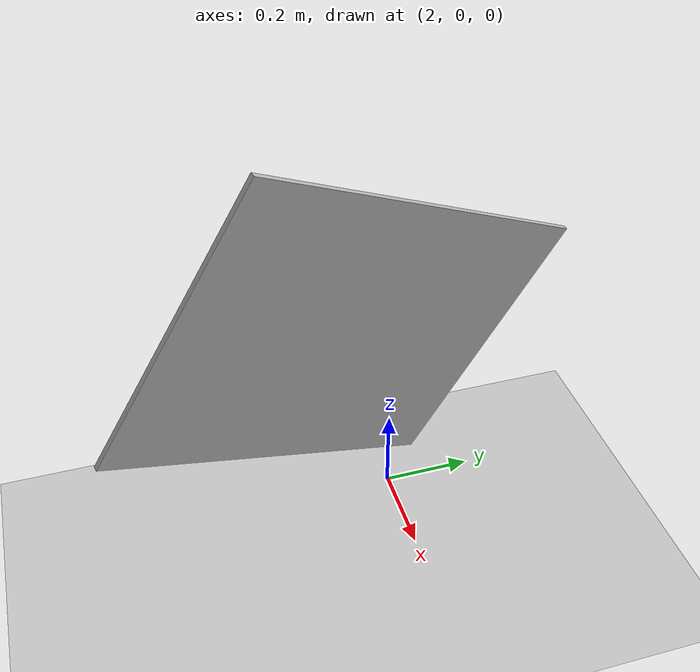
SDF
<sdf version="1.7">
 <world name="default">
  <scene><ambient>0.4 0.4 0.4 1</ambient><background>0.7 0.7 0.7 1</background><shadows>1</shadows></scene>
  <light name="sun" type="directional">
   <pose>0 0 10 0 -0 0</pose>
   <diffuse>0.8 0.8 0.8 1</diffuse>
   <specular>0.2 0.2 0.2 1</specular>
   <attenuation>
    <range>1000</range>
    <constant>0.9</constant>
    <linear>0.01</linear>
    <quadratic>0.001</quadratic>
   </attenuation>
   <direction>-0.5 0.1 -0.9</direction>
   <spot><inner_angle>0</inner_angle><outer_angle>0</outer_angle><falloff>0</falloff></spot>
  </light>
  <model name="ground_plane">
   <static>1</static>
   <link name="link">
    <collision name="collision">
     <geometry><plane><normal>0 0 1</normal><size>100 100</size></plane></geometry>
     <surface>
      <contact><collide_bitmask>65535</collide_bitmask></contact>
      <friction><ode><mu>100</mu><mu2>50</mu2></ode></friction>
     </surface>
    </collision>
    <visual name="visual">
     <cast_shadows>0</cast_shadows>
     <geometry><plane><normal>0 0 1</normal><size>100 100</size></plane></geometry>
     <material>
      <script><uri>file://media/materials/scripts/gazebo.material</uri><name>Gazebo/Grey</name></script>
     </material>
    </visual>
   </link>
  </model>
  <physics type="ode">
   <real_time_update_rate>1000</real_time_update_rate>
   <max_step_size>0.001</max_step_size>
   <real_time_factor>1</real_time_factor>
   <ode>
    <solver>
     <type>quick</type>
     <iters>150</iters>
     <precon_iters>0</precon_iters>
     <sor>1.4</sor>
     <use_dynamic_moi_rescaling>1</use_dynamic_moi_rescaling>
    </solver>
    <constraints>
     <cfm>1e-05</cfm>
     <erp>0.2</erp>
     <contact_max_correcting_vel>2000</contact_max_correcting_vel>
     <contact_surface_layer>0.01</contact_surface_layer>
    </constraints>
   </ode>
  </physics>
  <gravity>0 0 -9.8</gravity>
  <magnetic_field>6e-06 2.3e-05 -4.2e-05</magnetic_field>
  <atmosphere type="adiabatic"/>
  <spherical_coordinates>
   <surface_model>EARTH_WGS84</surface_model>
   <latitude_deg>0</latitude_deg>
   <longitude_deg>0</longitude_deg>
   <elevation>0</elevation>
   <heading_deg>0</heading_deg>
  </spherical_coordinates>
  <model name="charuco_800x600">
   <static>1</static>
   <link name="charuco">
    <visual name="charuco_800x600">
     <geometry><mesh><uri>model://charuco_800x600/charuco_800x600.dae</uri></mesh></geometry>
    </visual>
    <collision name="charuco_800x600">
     <geometry><mesh><uri>model://charuco_800x600/charuco_800x600.dae</uri></mesh></geometry>
    </collision>
   </link>
   <pose>2.12864 -0.025208 0.338216 1.36982 -0.481461 -1.20182</pose>
  </model>
  <light name="user_point_light_0" type="point">
   <pose>-0.048537 -1.88631 1 0 -0 0</pose>
   <diffuse>0.5 0.5 0.5 1</diffuse>
   <specular>0.1 0.1 0.1 1</specular>
   <attenuation>
    <range>20</range>
    <constant>0.5</constant>
    <linear>0.01</linear>
    <quadratic>0.001</quadratic>
   </attenuation>
   <cast_shadows>0</cast_shadows>
   <direction>0 0 -1</direction>
  </light>
  <light name="user_point_light_1" type="point">
   <pose>-0.051339 1.13969 1 0 -0 0</pose>
   <diffuse>0.5 0.5 0.5 1</diffuse>
   <specular>0.1 0.1 0.1 1</specular>
   <attenuation>
    <range>20</range>
    <constant>0.5</constant>
    <linear>0.01</linear>
    <quadratic>0.001</quadratic>
   </attenuation>
   <cast_shadows>0</cast_shadows>
   <direction>0 0 -1</direction>
  </light>
  <light name="user_point_light_2" type="point">
   <pose>2.81234 1.17902 1 0 -0 0</pose>
   <diffuse>0.5 0.5 0.5 1</diffuse>
   <specular>0.1 0.1 0.1 1</specular>
   <attenuation>
    <range>20</range>
    <constant>0.5</constant>
    <linear>0.01</linear>
    <quadratic>0.001</quadratic>
   </attenuation>
   <cast_shadows>0</cast_shadows>
   <direction>0 0 -1</direction>
  </light>
  <light name="user_point_light_3" type="point">
   <pose>3.14136 -2.09119 1 0 -0 0</pose>
   <diffuse>0.5 0.5 0.5 1</diffuse>
   <specular>0.1 0.1 0.1 1</specular>
   <attenuation>
    <range>20</range>
    <constant>0.5</constant>
    <linear>0.01</linear>
    <quadratic>0.001</quadratic>
   </attenuation>
   <cast_shadows>0</cast_shadows>
   <direction>0 0 -1</direction>
  </light>
  <light name="user_point_light_4" type="point">
   <pose>1.84898 -0.176029 1 0 -0 0</pose>
   <diffuse>0.5 0.5 0.5 1</diffuse>
   <specular>0.1 0.1 0.1 1</specular>
   <attenuation>
    <range>20</range>
    <constant>0.5</constant>
    <linear>0.01</linear>
    <quadratic>0.001</quadratic>
   </attenuation>
   <cast_shadows>0</cast_shadows>
   <direction>0 0 -1</direction>
  </light>
  <light name="user_point_light_5" type="point">
   <pose>-1.66554 0.183176 1 0 -0 0</pose>
   <diffuse>0.5 0.5 0.5 1</diffuse>
   <specular>0.1 0.1 0.1 1</specular>
   <attenuation>
    <range>20</range>
    <constant>0.5</constant>
    <linear>0.01</linear>
    <quadratic>0.001</quadratic>
   </attenuation>
   <cast_shadows>0</cast_shadows>
   <direction>0 0 -1</direction>
  </light>
  <light name="user_point_light_6" type="point">
   <pose>0.891989 4.43299 1 0 -0 0</pose>
   <diffuse>0.5 0.5 0.5 1</diffuse>
   <specular>0.1 0.1 0.1 1</specular>
   <attenuation>
    <range>20</range>
    <constant>0.5</constant>
    <linear>0.01</linear>
    <quadratic>0.001</quadratic>
   </attenuation>
   <cast_shadows>0</cast_shadows>
   <direction>0 0 -1</direction>
  </light>
  <light name="user_point_light_7" type="point">
   <pose>6.1742 0.415669 1 0 -0 0</pose>
   <diffuse>0.5 0.5 0.5 1</diffuse>
   <specular>0.1 0.1 0.1 1</specular>
   <attenuation>
    <range>20</range>
    <constant>0.5</constant>
    <linear>0.01</linear>
    <quadratic>0.001</quadratic>
   </attenuation>
   <cast_shadows>0</cast_shadows>
   <direction>0 0 -1</direction>
  </light>
  <light name="user_point_light_8" type="point">
   <pose>5.07081 2.83277 1 0 -0 0</pose>
   <diffuse>0.5 0.5 0.5 1</diffuse>
   <specular>0.1 0.1 0.1 1</specular>
   <attenuation>
    <range>20</range>
    <constant>0.5</constant>
    <linear>0.01</linear>
    <quadratic>0.001</quadratic>
   </attenuation>
   <cast_shadows>0</cast_shadows>
   <direction>0 0 -1</direction>
  </light>
  <light name="user_point_light_9" type="point">
   <pose>3.04243 3.65686 1 0 -0 0</pose>
   <diffuse>0.5 0.5 0.5 1</diffuse>
   <specular>0.1 0.1 0.1 1</specular>
   <attenuation>
    <range>20</range>
    <constant>0.5</constant>
    <linear>0.01</linear>
    <quadratic>0.001</quadratic>
   </attenuation>
   <cast_shadows>0</cast_shadows>
   <direction>0 0 -1</direction>
  </light>
  <light name="user_point_light_10" type="point">
   <pose>-1.18616 -1.39401 1 0 -0 0</pose>
   <diffuse>0.5 0.5 0.5 1</diffuse>
   <specular>0.1 0.1 0.1 1</specular>
   <attenuation>
    <range>20</range>
    <constant>0.5</constant>
    <linear>0.01</linear>
    <quadratic>0.001</quadratic>
   </attenuation>
   <cast_shadows>0</cast_shadows>
   <direction>0 0 -1</direction>
  </light>
  <light name="user_point_light_11" type="point">
   <pose>-2.78028 2.63321 1 0 -0 0</pose>
   <diffuse>0.5 0.5 0.5 1</diffuse>
   <specular>0.1 0.1 0.1 1</specular>
   <attenuation>
    <range>20</range>
    <constant>0.5</constant>
    <linear>0.01</linear>
    <quadratic>0.001</quadratic>
   </attenuation>
   <cast_shadows>0</cast_shadows>
   <direction>0 0 -1</direction>
  </light>
 </world>
</sdf>
